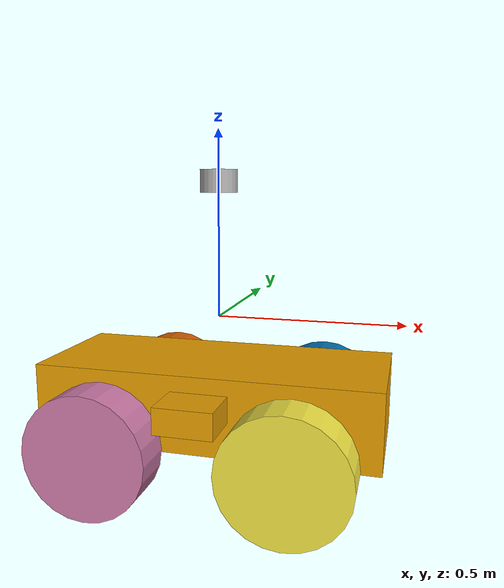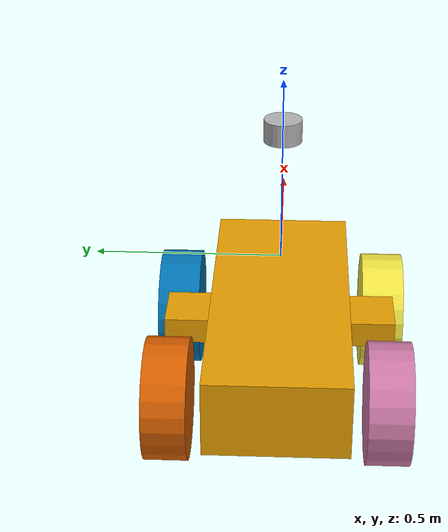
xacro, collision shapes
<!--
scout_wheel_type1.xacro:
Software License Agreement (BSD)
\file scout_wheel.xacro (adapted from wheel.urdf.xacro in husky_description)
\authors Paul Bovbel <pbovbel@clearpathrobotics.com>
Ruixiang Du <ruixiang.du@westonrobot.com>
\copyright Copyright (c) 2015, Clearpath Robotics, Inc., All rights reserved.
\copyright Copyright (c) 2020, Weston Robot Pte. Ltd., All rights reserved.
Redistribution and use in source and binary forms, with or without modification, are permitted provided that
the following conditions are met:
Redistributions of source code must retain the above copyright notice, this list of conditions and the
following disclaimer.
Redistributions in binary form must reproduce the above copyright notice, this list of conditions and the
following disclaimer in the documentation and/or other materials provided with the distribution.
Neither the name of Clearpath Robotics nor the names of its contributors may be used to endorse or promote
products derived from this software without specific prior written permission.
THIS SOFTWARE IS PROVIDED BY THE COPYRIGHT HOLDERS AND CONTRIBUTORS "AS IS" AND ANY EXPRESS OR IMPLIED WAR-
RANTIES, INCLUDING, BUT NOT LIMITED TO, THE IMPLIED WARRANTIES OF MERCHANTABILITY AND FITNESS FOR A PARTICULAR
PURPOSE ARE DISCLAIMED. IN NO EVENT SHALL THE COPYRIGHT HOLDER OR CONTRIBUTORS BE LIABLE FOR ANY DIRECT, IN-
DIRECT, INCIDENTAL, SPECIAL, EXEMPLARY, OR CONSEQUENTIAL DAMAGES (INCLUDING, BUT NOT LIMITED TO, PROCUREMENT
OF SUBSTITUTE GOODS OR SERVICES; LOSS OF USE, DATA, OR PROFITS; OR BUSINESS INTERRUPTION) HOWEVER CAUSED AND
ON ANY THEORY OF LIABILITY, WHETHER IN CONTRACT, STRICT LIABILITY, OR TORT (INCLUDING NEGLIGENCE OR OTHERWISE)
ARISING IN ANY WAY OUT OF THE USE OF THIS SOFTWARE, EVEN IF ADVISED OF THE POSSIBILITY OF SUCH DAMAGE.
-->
<robot name="my_robot" xmlns:xacro="http://www.ros.org/wiki/xacro">

    <!-- inertial matrix -->
    <xacro:include filename="gazebo/inertia.xacro" />
    <!-- robot modeling -->
    <xacro:include filename="scout_v2.xacro" />
    <!-- motion control -->
    <xacro:include filename="gazebo/move.xacro" />
    <!-- sensor -->
    <xacro:include filename="gazebo/lidar16.xacro" />
    <xacro:include filename="gazebo/imu.xacro" />

</robot>

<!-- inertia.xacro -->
<robot name="base" xmlns:xacro="http://wiki.ros.org/xacro">
    <!-- Macro for inertia matrix -->
    <xacro:macro name="sphere_inertial_matrix" params="m r">
        <inertial>
            <mass value="${m}" />
            <inertia ixx="${2*m*r*r/5}" ixy="0" ixz="0"
                iyy="${2*m*r*r/5}" iyz="0"
                izz="${2*m*r*r/5}" />
        </inertial>
    </xacro:macro>

    <xacro:macro name="cylinder_inertial_matrix" params="m r h">
        <inertial>
            <mass value="${m}" />
            <inertia ixx="${m*(3*r*r+h*h)/12}" ixy = "0" ixz = "0"
                iyy="${m*(3*r*r+h*h)/12}" iyz = "0"
                izz="${m*r*r/2}" />
        </inertial>
    </xacro:macro>

    <xacro:macro name="box_inertial_matrix" params="m l w h">
       <inertial>
               <mass value="${m}" />
               <inertia ixx="${m*(h*h + l*l)/12}" ixy = "0" ixz = "0"
                   iyy="${m*(w*w + l*l)/12}" iyz= "0"
                   izz="${m*(w*w + h*h)/12}" />
       </inertial>
   </xacro:macro>
</robot>

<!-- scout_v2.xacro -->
<robot name="scout_v2"
    xmlns:xacro="http://ros.org/wiki/xacro">

    <xacro:arg name="robot_namespace" default="/" />

    <!-- Adding Wheels -->
    <xacro:include filename="$(find sim_model)/urdf/scout_wheel_type1.xacro" />
    <xacro:include filename="$(find sim_model)/urdf/scout_wheel_type2.xacro" />

    <!-- Variables -->
    <xacro:property name="M_PI" value="3.14159"/>

    <!-- Vehicle Geometries -->
    <xacro:property name="base_x_size" value="0.9250000" />
    <xacro:property name="base_y_size" value="0.380000" />
    <xacro:property name="base_z_size" value="0.210000" />

    <xacro:property name="wheelbase" value="0.498" />
    <xacro:property name="track" value="0.58306" />
    <xacro:property name="wheel_vertical_offset" value="-0.0702" />

    <xacro:property name="wheel_length" value="1.1653e-01" />
    <xacro:property name="wheel_radius" value="1.6459e-01" />

    <!-- Base link -->
    <link name="base_link">
        <visual>
            <origin xyz="0 0 0" rpy="0 0 0" />
            <geometry>
                <mesh filename="package://sim_model/meshes/base_link.dae" />
            </geometry>
        </visual>
        <collision>
            <origin xyz="0 0 0.008" rpy="0 0 0" />
            <geometry>
                <box size="${base_x_size} ${base_y_size} ${base_z_size}"/>
            </geometry>
        </collision>
        <collision>
            <origin xyz="0 0 ${base_z_size/6}" rpy="0 0 0" />
            <geometry>
                <box size="${base_x_size/6} ${base_y_size*1.65} ${base_z_size/3}"/>
            </geometry>
        </collision>
    </link>

    <link name="base_footprint"/>

    <joint name="base_footprint_joint" type="fixed">
        <origin xyz="0 0 ${wheel_vertical_offset - wheel_radius}" rpy="0 0 0" />
        <parent link="base_footprint" />
        <child link="base_link" />
    </joint>

    <link name="inertial_link">
        <inertial>
            <mass value="40" />
            <origin xyz="0.0 0.0 0.0" />
            <inertia ixx="2.288641" ixy="0" ixz="0" iyy="5.103976" iyz="0" izz="3.431465" />
        </inertial>
    </link>

    <joint name="inertial_joint" type="fixed">
        <origin xyz="0 0 0" rpy="0 0 0" />
        <parent link="base_link" />
        <child link="inertial_link" />
    </joint>

    <!-- Scout wheel macros -->
    <!-- wheel labeled from 0 to 3, conter-clockwise, starting from front right wheel -->
    <!-- motor 1 and 2 (left side) are mechanically installed in a reversed direction -->
    <xacro:scout_wheel_type1 wheel_prefix="front_right">
        <origin xyz="${wheelbase/2} ${-track/2} ${wheel_vertical_offset}" rpy="0 0 0" />
    </xacro:scout_wheel_type1>
    <xacro:scout_wheel_type2 wheel_prefix="front_left">
        <origin xyz="${wheelbase/2} ${track/2} ${wheel_vertical_offset}" rpy="0 0 0" />
    </xacro:scout_wheel_type2>
    <xacro:scout_wheel_type1 wheel_prefix="rear_left">
        <origin xyz="${-wheelbase/2} ${track/2} ${wheel_vertical_offset}" rpy="0 0 0" />
    </xacro:scout_wheel_type1>
    <xacro:scout_wheel_type2 wheel_prefix="rear_right">
        <origin xyz="${-wheelbase/2} ${-track/2} ${wheel_vertical_offset}" rpy="0 0 0" />
    </xacro:scout_wheel_type2>

    <!-- 3D lidar parameters -->
    <xacro:property name="lidar_length" value="0.06" />
    <xacro:property name="lidar_radius" value="0.05" />
    <xacro:property name="lidar_m" value="0.5" />
    <!-- Adding a 3d lidar -->
    <link name="3d_lidar">
        <visual>
            <origin xyz="0 0 -0.0377" />
            <geometry>
            <mesh filename="package://sim_model/meshes/VLP16_scan.dae" />
            </geometry>
        </visual>
        <visual>
            <origin xyz="0 0 -0.0377"/>
            <geometry>
            <mesh filename="package://sim_model/meshes/VLP16_base_1.dae" />
            </geometry>
        </visual>
        <visual>
            <origin xyz="0 0 -0.0377"/>
            <geometry>
            <mesh filename="package://sim_model/meshes/VLP16_base_2.dae" />
            </geometry>
        </visual>

        <collision>
            <geometry>
                <cylinder radius="${lidar_radius}" length="${lidar_length}" />
            </geometry>
            <origin xyz="0.0 0.0 0.0" rpy="0.0 0.0 0.0" />
        </collision>
        <xacro:cylinder_inertial_matrix m="${lidar_m}" r="${lidar_radius}" h="${lidar_length}" />
    </link>

    <joint name="3d_lidar_joint" type="fixed">
        <origin xyz="0 0 0.6" rpy="0 0 0" />
        <parent link="base_link" />
        <child link="3d_lidar" />
    </joint>

</robot>

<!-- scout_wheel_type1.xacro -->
<robot xmlns:xacro="http://ros.org/wiki/xacro" name="scout_wheel">

    <xacro:macro name="scout_wheel_type1" params="wheel_prefix *joint_pose">
        <link name="${wheel_prefix}_wheel_link">
            <inertial>
                <mass value="3" />
                <origin xyz="0 0 0" />
                <inertia ixx="0.7171" ixy="0" ixz="0" iyy="0.1361" iyz="0" izz="0.7171" />
            </inertial>
            <visual>
                <origin xyz="0 0 0" rpy="0 0 0" />
                <geometry>
                    <mesh filename="package://sim_model/meshes/wheel_type1.dae" />
                </geometry>
            </visual>
            <collision>
                <origin xyz="0 0 0" rpy="${M_PI/2} 0 0" />
                <geometry>
                    <cylinder length="${wheel_length}" radius="${wheel_radius}" />
                </geometry>
            </collision>
        </link>

        <joint name="${wheel_prefix}_wheel" type="continuous">
            <parent link="base_link"/>
            <child link="${wheel_prefix}_wheel_link"/>
            <xacro:insert_block name="joint_pose"/>
            <axis xyz="0 1 0" rpy="0 0 0" />
        </joint>
    </xacro:macro>

</robot>

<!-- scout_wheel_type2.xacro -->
<robot xmlns:xacro="http://ros.org/wiki/xacro" name="scout_wheel">

    <xacro:macro name="scout_wheel_type2" params="wheel_prefix *joint_pose">
        <link name="${wheel_prefix}_wheel_link">
            <inertial>
                <mass value="3" />
                <origin xyz="0 0 0" />
                <inertia ixx="0.7171" ixy="0" ixz="0" iyy="0.1361" iyz="0" izz="0.7171" />
            </inertial>
            <visual>
                <origin xyz="0 0 0" rpy="0 0 0" />
                <geometry>
                    <mesh filename="package://sim_model/meshes/wheel_type2.dae" />
                </geometry>
            </visual>
            <collision>
                <origin xyz="0 0 0" rpy="${M_PI/2} 0 0" />
                <geometry>
                    <cylinder length="${wheel_length}" radius="${wheel_radius}" />
                </geometry>
            </collision>
        </link>

        <joint name="${wheel_prefix}_wheel" type="continuous">
            <parent link="base_link"/>
            <child link="${wheel_prefix}_wheel_link"/>
            <xacro:insert_block name="joint_pose"/>
            <axis xyz="0 1 0" rpy="0 0 0" />
        </joint>
    </xacro:macro>

</robot>
